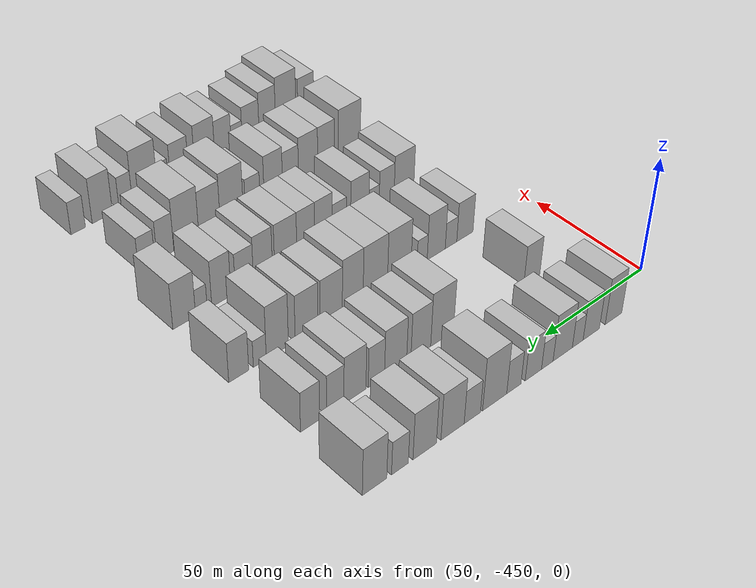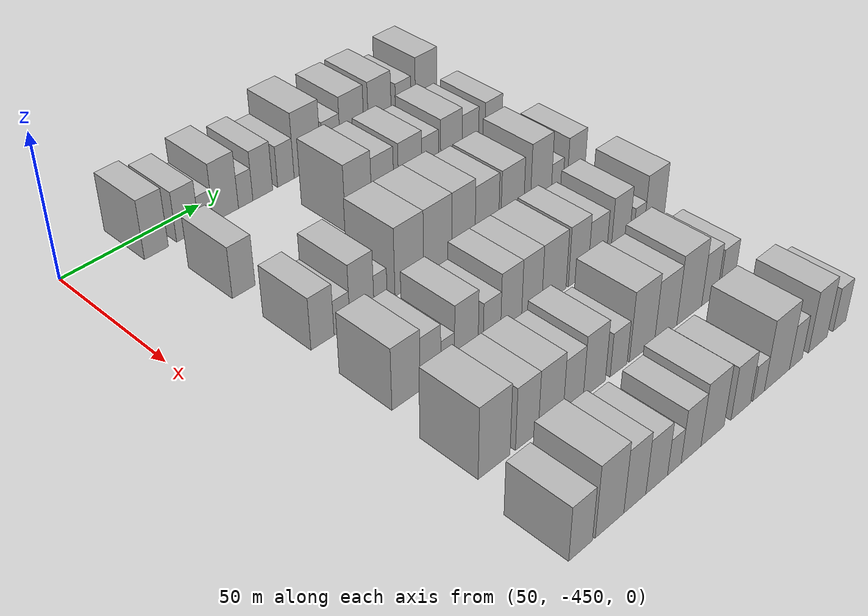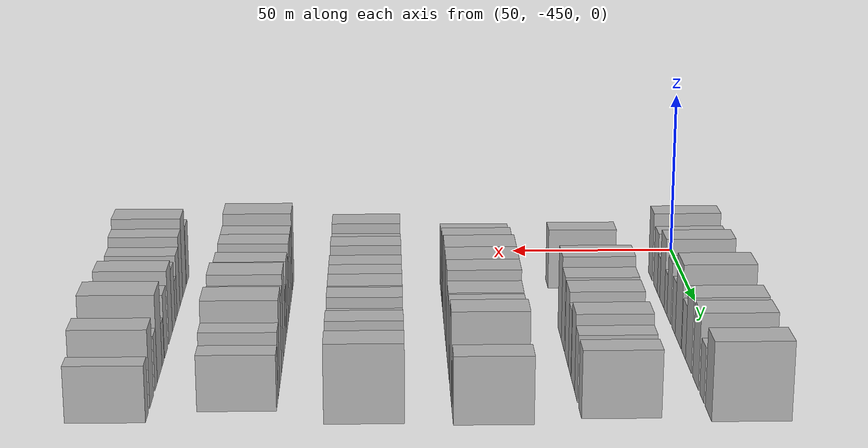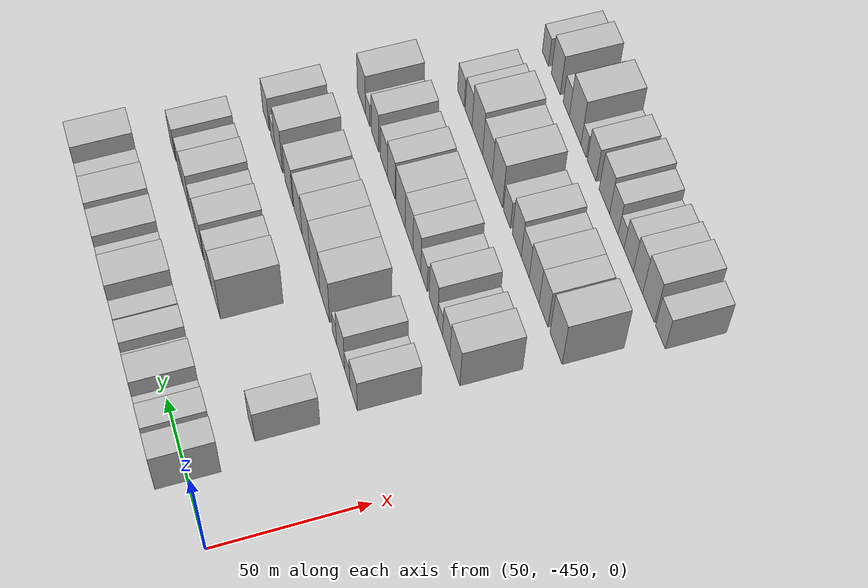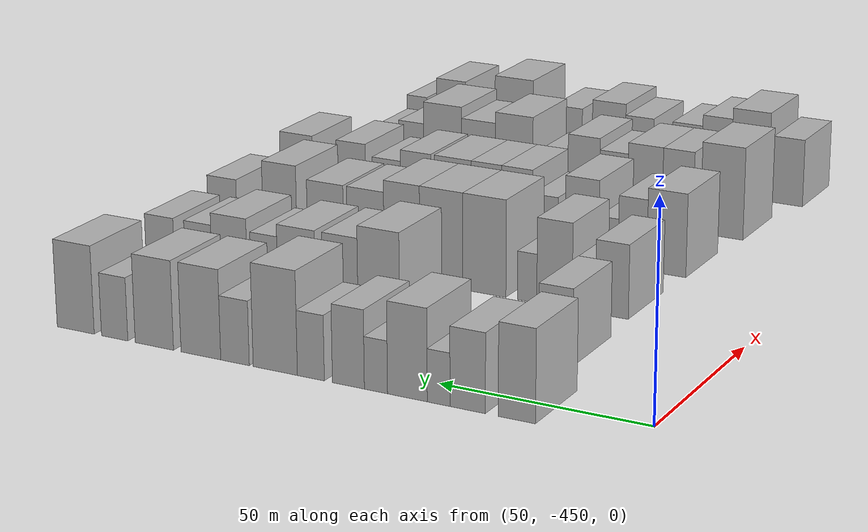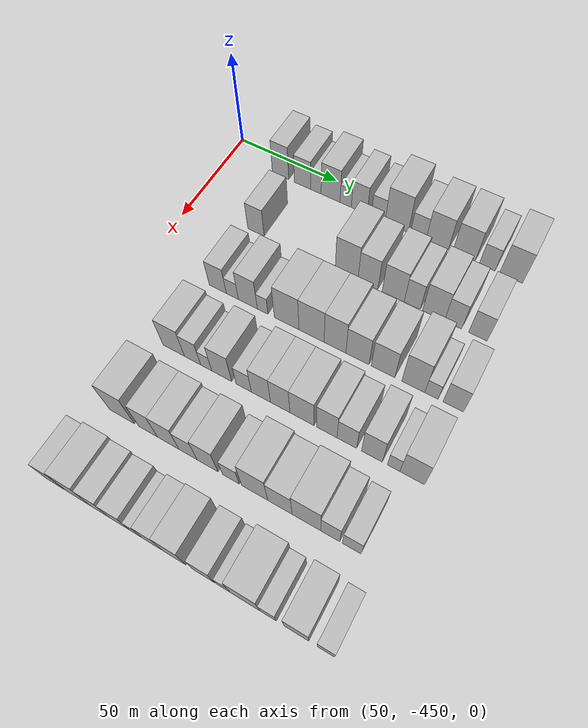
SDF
<sdf version="1.6">
 <world name="default">
  <model name="building_9">
   <static>1</static>
   <pose>50.0000 -423.4777 0 0.000000 0.000000 0.000000</pose>
   <link name="link">
    <pose>0 0 10.50 0 0 0</pose>
    <collision name="collision"><geometry><box><size>20.0000 8.5960 21.0000</size></box></geometry></collision>
    <visual name="visual">
     <cast_shadows>0</cast_shadows>
     <geometry><box><size>20.0000 8.5960 21.0000</size></box></geometry>
     <material>
      <script>
       <uri>model://HANNAS_wall/materials/scripts</uri>
       <uri>model://HANNAS_wall/materials/textures</uri>
       <name>vrc/HANNAS_wall</name>
      </script>
     </material>
    </visual>
   </link>
  </model>
  <model name="building_10">
   <static>1</static>
   <pose>50.0000 -412.0099 0 0.000000 0.000000 0.000000</pose>
   <link name="link">
    <pose>0 0 9.00 0 0 0</pose>
    <collision name="collision"><geometry><box><size>20.0000 8.3396 18.0000</size></box></geometry></collision>
    <visual name="visual">
     <cast_shadows>0</cast_shadows>
     <geometry><box><size>20.0000 8.3396 18.0000</size></box></geometry>
     <material>
      <script>
       <uri>model://HANNAS_wall/materials/scripts</uri>
       <uri>model://HANNAS_wall/materials/textures</uri>
       <name>vrc/HANNAS_wall</name>
      </script>
     </material>
    </visual>
   </link>
  </model>
  <model name="building_11">
   <static>1</static>
   <pose>50.0000 -405.1322 0 0.000000 0.000000 0.000000</pose>
   <link name="link">
    <pose>0 0 6.00 0 0 0</pose>
    <collision name="collision"><geometry><box><size>20.0000 5.4160 12.0000</size></box></geometry></collision>
    <visual name="visual">
     <cast_shadows>0</cast_shadows>
     <geometry><box><size>20.0000 5.4160 12.0000</size></box></geometry>
     <material>
      <script>
       <uri>model://HANNAS_wall/materials/scripts</uri>
       <uri>model://HANNAS_wall/materials/textures</uri>
       <name>vrc/HANNAS_wall</name>
      </script>
     </material>
    </visual>
   </link>
  </model>
  <model name="building_12">
   <static>1</static>
   <pose>50.0000 -397.6413 0 0.000000 0.000000 0.000000</pose>
   <link name="link">
    <pose>0 0 10.50 0 0 0</pose>
    <collision name="collision"><geometry><box><size>20.0000 9.5656 21.0000</size></box></geometry></collision>
    <visual name="visual">
     <cast_shadows>0</cast_shadows>
     <geometry><box><size>20.0000 9.5656 21.0000</size></box></geometry>
     <material>
      <script>
       <uri>model://HANNAS_wall/materials/scripts</uri>
       <uri>model://HANNAS_wall/materials/textures</uri>
       <name>vrc/HANNAS_wall</name>
      </script>
     </material>
    </visual>
   </link>
  </model>
  <model name="building_13">
   <static>1</static>
   <pose>50.0000 -390.0340 0 0.000000 0.000000 0.000000</pose>
   <link name="link">
    <pose>0 0 6.00 0 0 0</pose>
    <collision name="collision"><geometry><box><size>20.0000 5.6491 12.0000</size></box></geometry></collision>
    <visual name="visual">
     <cast_shadows>0</cast_shadows>
     <geometry><box><size>20.0000 5.6491 12.0000</size></box></geometry>
     <material>
      <script>
       <uri>model://HANNAS_wall/materials/scripts</uri>
       <uri>model://HANNAS_wall/materials/textures</uri>
       <name>vrc/HANNAS_wall</name>
      </script>
     </material>
    </visual>
   </link>
  </model>
  <model name="building_14">
   <static>1</static>
   <pose>50.0000 -383.2667 0 0.000000 0.000000 0.000000</pose>
   <link name="link">
    <pose>0 0 9.00 0 0 0</pose>
    <collision name="collision"><geometry><box><size>20.0000 7.8855 18.0000</size></box></geometry></collision>
    <visual name="visual">
     <cast_shadows>0</cast_shadows>
     <geometry><box><size>20.0000 7.8855 18.0000</size></box></geometry>
     <material>
      <script>
       <uri>model://HANNAS_wall/materials/scripts</uri>
       <uri>model://HANNAS_wall/materials/textures</uri>
       <name>vrc/HANNAS_wall</name>
      </script>
     </material>
    </visual>
   </link>
  </model>
  <model name="building_15">
   <static>1</static>
   <pose>50.0000 -373.9476 0 0.000000 0.000000 0.000000</pose>
   <link name="link">
    <pose>0 0 7.50 0 0 0</pose>
    <collision name="collision"><geometry><box><size>20.0000 6.7527 15.0000</size></box></geometry></collision>
    <visual name="visual">
     <cast_shadows>0</cast_shadows>
     <geometry><box><size>20.0000 6.7527 15.0000</size></box></geometry>
     <material>
      <script>
       <uri>model://HANNAS_wall/materials/scripts</uri>
       <uri>model://HANNAS_wall/materials/textures</uri>
       <name>vrc/HANNAS_wall</name>
      </script>
     </material>
    </visual>
   </link>
  </model>
  <model name="building_16">
   <static>1</static>
   <pose>50.0000 -364.9535 0 0.000000 0.000000 0.000000</pose>
   <link name="link">
    <pose>0 0 12.00 0 0 0</pose>
    <collision name="collision"><geometry><box><size>20.0000 11.2354 24.0000</size></box></geometry></collision>
    <visual name="visual">
     <cast_shadows>0</cast_shadows>
     <geometry><box><size>20.0000 11.2354 24.0000</size></box></geometry>
     <material>
      <script>
       <uri>model://HANNAS_wall/materials/scripts</uri>
       <uri>model://HANNAS_wall/materials/textures</uri>
       <name>vrc/HANNAS_wall</name>
      </script>
     </material>
    </visual>
   </link>
  </model>
  <model name="building_17">
   <static>1</static>
   <pose>50.0000 -354.6423 0 0.000000 0.000000 0.000000</pose>
   <link name="link">
    <pose>0 0 7.50 0 0 0</pose>
    <collision name="collision"><geometry><box><size>20.0000 7.3870 15.0000</size></box></geometry></collision>
    <visual name="visual">
     <cast_shadows>0</cast_shadows>
     <geometry><box><size>20.0000 7.3870 15.0000</size></box></geometry>
     <material>
      <script>
       <uri>model://HANNAS_wall/materials/scripts</uri>
       <uri>model://HANNAS_wall/materials/textures</uri>
       <name>vrc/HANNAS_wall</name>
      </script>
     </material>
    </visual>
   </link>
  </model>
  <model name="building_18">
   <static>1</static>
   <pose>50.0000 -345.7513 0 0.000000 0.000000 0.000000</pose>
   <link name="link">
    <pose>0 0 10.50 0 0 0</pose>
    <collision name="collision"><geometry><box><size>20.0000 10.3950 21.0000</size></box></geometry></collision>
    <visual name="visual">
     <cast_shadows>0</cast_shadows>
     <geometry><box><size>20.0000 10.3950 21.0000</size></box></geometry>
     <material>
      <script>
       <uri>model://HANNAS_wall/materials/scripts</uri>
       <uri>model://HANNAS_wall/materials/textures</uri>
       <name>vrc/HANNAS_wall</name>
      </script>
     </material>
    </visual>
   </link>
  </model>
  <model name="building_19">
   <static>1</static>
   <pose>50.0000 -333.4408 0 0.000000 0.000000 0.000000</pose>
   <link name="link">
    <pose>0 0 10.50 0 0 0</pose>
    <collision name="collision"><geometry><box><size>20.0000 10.2261 21.0000</size></box></geometry></collision>
    <visual name="visual">
     <cast_shadows>0</cast_shadows>
     <geometry><box><size>20.0000 10.2261 21.0000</size></box></geometry>
     <material>
      <script>
       <uri>model://HANNAS_wall/materials/scripts</uri>
       <uri>model://HANNAS_wall/materials/textures</uri>
       <name>vrc/HANNAS_wall</name>
      </script>
     </material>
    </visual>
   </link>
  </model>
  <model name="building_20">
   <static>1</static>
   <pose>50.0000 -322.7514 0 0.000000 0.000000 0.000000</pose>
   <link name="link">
    <pose>0 0 7.50 0 0 0</pose>
    <collision name="collision"><geometry><box><size>20.0000 7.1527 15.0000</size></box></geometry></collision>
    <visual name="visual">
     <cast_shadows>0</cast_shadows>
     <geometry><box><size>20.0000 7.1527 15.0000</size></box></geometry>
     <material>
      <script>
       <uri>model://HANNAS_wall/materials/scripts</uri>
       <uri>model://HANNAS_wall/materials/textures</uri>
       <name>vrc/HANNAS_wall</name>
      </script>
     </material>
    </visual>
   </link>
  </model>
  <model name="building_21">
   <static>1</static>
   <pose>50.0000 -312.0736 0 0.000000 0.000000 0.000000</pose>
   <link name="link">
    <pose>0 0 10.50 0 0 0</pose>
    <collision name="collision"><geometry><box><size>20.0000 10.2030 21.0000</size></box></geometry></collision>
    <visual name="visual">
     <cast_shadows>0</cast_shadows>
     <geometry><box><size>20.0000 10.2030 21.0000</size></box></geometry>
     <material>
      <script>
       <uri>model://HANNAS_wall/materials/scripts</uri>
       <uri>model://HANNAS_wall/materials/textures</uri>
       <name>vrc/HANNAS_wall</name>
      </script>
     </material>
    </visual>
   </link>
  </model>
  <model name="building_124">
   <static>1</static>
   <pose>82.0000 -416.9278 0 0.000000 0.000000 0.000000</pose>
   <link name="link">
    <pose>0 0 9.00 0 0 0</pose>
    <collision name="collision"><geometry><box><size>20.0000 8.2625 18.0000</size></box></geometry></collision>
    <visual name="visual">
     <cast_shadows>0</cast_shadows>
     <geometry><box><size>20.0000 8.2625 18.0000</size></box></geometry>
     <material>
      <script>
       <uri>model://HANNAS_wall/materials/scripts</uri>
       <uri>model://HANNAS_wall/materials/textures</uri>
       <name>vrc/HANNAS_wall</name>
      </script>
     </material>
    </visual>
   </link>
  </model>
  <model name="building_125">
   <static>1</static>
   <pose>82.0000 -372.6218 0 0.000000 0.000000 0.000000</pose>
   <link name="link">
    <pose>0 0 12.00 0 0 0</pose>
    <collision name="collision"><geometry><box><size>20.0000 10.7831 24.0000</size></box></geometry></collision>
    <visual name="visual">
     <cast_shadows>0</cast_shadows>
     <geometry><box><size>20.0000 10.7831 24.0000</size></box></geometry>
     <material>
      <script>
       <uri>model://HANNAS_wall/materials/scripts</uri>
       <uri>model://HANNAS_wall/materials/textures</uri>
       <name>vrc/HANNAS_wall</name>
      </script>
     </material>
    </visual>
   </link>
  </model>
  <model name="building_126">
   <static>1</static>
   <pose>82.0000 -362.6271 0 0.000000 0.000000 0.000000</pose>
   <link name="link">
    <pose>0 0 10.50 0 0 0</pose>
    <collision name="collision"><geometry><box><size>20.0000 9.2064 21.0000</size></box></geometry></collision>
    <visual name="visual">
     <cast_shadows>0</cast_shadows>
     <geometry><box><size>20.0000 9.2064 21.0000</size></box></geometry>
     <material>
      <script>
       <uri>model://HANNAS_wall/materials/scripts</uri>
       <uri>model://HANNAS_wall/materials/textures</uri>
       <name>vrc/HANNAS_wall</name>
      </script>
     </material>
    </visual>
   </link>
  </model>
  <model name="building_127">
   <static>1</static>
   <pose>82.0000 -351.0024 0 0.000000 0.000000 0.000000</pose>
   <link name="link">
    <pose>0 0 10.50 0 0 0</pose>
    <collision name="collision"><geometry><box><size>20.0000 10.0430 21.0000</size></box></geometry></collision>
    <visual name="visual">
     <cast_shadows>0</cast_shadows>
     <geometry><box><size>20.0000 10.0430 21.0000</size></box></geometry>
     <material>
      <script>
       <uri>model://HANNAS_wall/materials/scripts</uri>
       <uri>model://HANNAS_wall/materials/textures</uri>
       <name>vrc/HANNAS_wall</name>
      </script>
     </material>
    </visual>
   </link>
  </model>
  <model name="building_128">
   <static>1</static>
   <pose>82.0000 -342.3606 0 0.000000 0.000000 0.000000</pose>
   <link name="link">
    <pose>0 0 9.00 0 0 0</pose>
    <collision name="collision"><geometry><box><size>20.0000 7.2405 18.0000</size></box></geometry></collision>
    <visual name="visual">
     <cast_shadows>0</cast_shadows>
     <geometry><box><size>20.0000 7.2405 18.0000</size></box></geometry>
     <material>
      <script>
       <uri>model://HANNAS_wall/materials/scripts</uri>
       <uri>model://HANNAS_wall/materials/textures</uri>
       <name>vrc/HANNAS_wall</name>
      </script>
     </material>
    </visual>
   </link>
  </model>
  <model name="building_129">
   <static>1</static>
   <pose>82.0000 -332.8972 0 0.000000 0.000000 0.000000</pose>
   <link name="link">
    <pose>0 0 10.50 0 0 0</pose>
    <collision name="collision"><geometry><box><size>20.0000 9.6863 21.0000</size></box></geometry></collision>
    <visual name="visual">
     <cast_shadows>0</cast_shadows>
     <geometry><box><size>20.0000 9.6863 21.0000</size></box></geometry>
     <material>
      <script>
       <uri>model://HANNAS_wall/materials/scripts</uri>
       <uri>model://HANNAS_wall/materials/textures</uri>
       <name>vrc/HANNAS_wall</name>
      </script>
     </material>
    </visual>
   </link>
  </model>
  <model name="building_130">
   <static>1</static>
   <pose>82.0000 -324.3057 0 0.000000 0.000000 0.000000</pose>
   <link name="link">
    <pose>0 0 9.00 0 0 0</pose>
    <collision name="collision"><geometry><box><size>20.0000 7.4966 18.0000</size></box></geometry></collision>
    <visual name="visual">
     <cast_shadows>0</cast_shadows>
     <geometry><box><size>20.0000 7.4966 18.0000</size></box></geometry>
     <material>
      <script>
       <uri>model://HANNAS_wall/materials/scripts</uri>
       <uri>model://HANNAS_wall/materials/textures</uri>
       <name>vrc/HANNAS_wall</name>
      </script>
     </material>
    </visual>
   </link>
  </model>
  <model name="building_131">
   <static>1</static>
   <pose>82.0000 -313.5541 0 0.000000 0.000000 0.000000</pose>
   <link name="link">
    <pose>0 0 9.00 0 0 0</pose>
    <collision name="collision"><geometry><box><size>20.0000 8.0067 18.0000</size></box></geometry></collision>
    <visual name="visual">
     <cast_shadows>0</cast_shadows>
     <geometry><box><size>20.0000 8.0067 18.0000</size></box></geometry>
     <material>
      <script>
       <uri>model://HANNAS_wall/materials/scripts</uri>
       <uri>model://HANNAS_wall/materials/textures</uri>
       <name>vrc/HANNAS_wall</name>
      </script>
     </material>
    </visual>
   </link>
  </model>
  <model name="building_232">
   <static>1</static>
   <pose>114.0000 -415.7824 0 0.000000 0.000000 0.000000</pose>
   <link name="link">
    <pose>0 0 9.00 0 0 0</pose>
    <collision name="collision"><geometry><box><size>20.0000 8.3455 18.0000</size></box></geometry></collision>
    <visual name="visual">
     <cast_shadows>0</cast_shadows>
     <geometry><box><size>20.0000 8.3455 18.0000</size></box></geometry>
     <material>
      <script>
       <uri>model://HANNAS_wall/materials/scripts</uri>
       <uri>model://HANNAS_wall/materials/textures</uri>
       <name>vrc/HANNAS_wall</name>
      </script>
     </material>
    </visual>
   </link>
  </model>
  <model name="building_233">
   <static>1</static>
   <pose>114.0000 -408.6740 0 0.000000 0.000000 0.000000</pose>
   <link name="link">
    <pose>0 0 6.00 0 0 0</pose>
    <collision name="collision"><geometry><box><size>20.0000 5.8712 12.0000</size></box></geometry></collision>
    <visual name="visual">
     <cast_shadows>0</cast_shadows>
     <geometry><box><size>20.0000 5.8712 12.0000</size></box></geometry>
     <material>
      <script>
       <uri>model://HANNAS_wall/materials/scripts</uri>
       <uri>model://HANNAS_wall/materials/textures</uri>
       <name>vrc/HANNAS_wall</name>
      </script>
     </material>
    </visual>
   </link>
  </model>
  <model name="building_234">
   <static>1</static>
   <pose>114.0000 -401.1987 0 0.000000 0.000000 0.000000</pose>
   <link name="link">
    <pose>0 0 10.50 0 0 0</pose>
    <collision name="collision"><geometry><box><size>20.0000 9.0793 21.0000</size></box></geometry></collision>
    <visual name="visual">
     <cast_shadows>0</cast_shadows>
     <geometry><box><size>20.0000 9.0793 21.0000</size></box></geometry>
     <material>
      <script>
       <uri>model://HANNAS_wall/materials/scripts</uri>
       <uri>model://HANNAS_wall/materials/textures</uri>
       <name>vrc/HANNAS_wall</name>
      </script>
     </material>
    </visual>
   </link>
  </model>
  <model name="building_235">
   <static>1</static>
   <pose>114.0000 -394.1381 0 0.000000 0.000000 0.000000</pose>
   <link name="link">
    <pose>0 0 6.00 0 0 0</pose>
    <collision name="collision"><geometry><box><size>20.0000 5.0420 12.0000</size></box></geometry></collision>
    <visual name="visual">
     <cast_shadows>0</cast_shadows>
     <geometry><box><size>20.0000 5.0420 12.0000</size></box></geometry>
     <material>
      <script>
       <uri>model://HANNAS_wall/materials/scripts</uri>
       <uri>model://HANNAS_wall/materials/textures</uri>
       <name>vrc/HANNAS_wall</name>
      </script>
     </material>
    </visual>
   </link>
  </model>
  <model name="building_236">
   <static>1</static>
   <pose>114.0000 -382.9175 0 0.000000 0.000000 0.000000</pose>
   <link name="link">
    <pose>0 0 12.00 0 0 0</pose>
    <collision name="collision"><geometry><box><size>20.0000 11.3992 24.0000</size></box></geometry></collision>
    <visual name="visual">
     <cast_shadows>0</cast_shadows>
     <geometry><box><size>20.0000 11.3992 24.0000</size></box></geometry>
     <material>
      <script>
       <uri>model://HANNAS_wall/materials/scripts</uri>
       <uri>model://HANNAS_wall/materials/textures</uri>
       <name>vrc/HANNAS_wall</name>
      </script>
     </material>
    </visual>
   </link>
  </model>
  <model name="building_237">
   <static>1</static>
   <pose>114.0000 -371.4480 0 0.000000 0.000000 0.000000</pose>
   <link name="link">
    <pose>0 0 12.00 0 0 0</pose>
    <collision name="collision"><geometry><box><size>20.0000 11.5396 24.0000</size></box></geometry></collision>
    <visual name="visual">
     <cast_shadows>0</cast_shadows>
     <geometry><box><size>20.0000 11.5396 24.0000</size></box></geometry>
     <material>
      <script>
       <uri>model://HANNAS_wall/materials/scripts</uri>
       <uri>model://HANNAS_wall/materials/textures</uri>
       <name>vrc/HANNAS_wall</name>
      </script>
     </material>
    </visual>
   </link>
  </model>
  <model name="building_238">
   <static>1</static>
   <pose>114.0000 -360.8293 0 0.000000 0.000000 0.000000</pose>
   <link name="link">
    <pose>0 0 12.00 0 0 0</pose>
    <collision name="collision"><geometry><box><size>20.0000 9.6978 24.0000</size></box></geometry></collision>
    <visual name="visual">
     <cast_shadows>0</cast_shadows>
     <geometry><box><size>20.0000 9.6978 24.0000</size></box></geometry>
     <material>
      <script>
       <uri>model://HANNAS_wall/materials/scripts</uri>
       <uri>model://HANNAS_wall/materials/textures</uri>
       <name>vrc/HANNAS_wall</name>
      </script>
     </material>
    </visual>
   </link>
  </model>
  <model name="building_239">
   <static>1</static>
   <pose>114.0000 -350.8976 0 0.000000 0.000000 0.000000</pose>
   <link name="link">
    <pose>0 0 10.50 0 0 0</pose>
    <collision name="collision"><geometry><box><size>20.0000 10.1657 21.0000</size></box></geometry></collision>
    <visual name="visual">
     <cast_shadows>0</cast_shadows>
     <geometry><box><size>20.0000 10.1657 21.0000</size></box></geometry>
     <material>
      <script>
       <uri>model://HANNAS_wall/materials/scripts</uri>
       <uri>model://HANNAS_wall/materials/textures</uri>
       <name>vrc/HANNAS_wall</name>
      </script>
     </material>
    </visual>
   </link>
  </model>
  <model name="building_240">
   <static>1</static>
   <pose>114.0000 -339.7421 0 0.000000 0.000000 0.000000</pose>
   <link name="link">
    <pose>0 0 10.50 0 0 0</pose>
    <collision name="collision"><geometry><box><size>20.0000 10.1452 21.0000</size></box></geometry></collision>
    <visual name="visual">
     <cast_shadows>0</cast_shadows>
     <geometry><box><size>20.0000 10.1452 21.0000</size></box></geometry>
     <material>
      <script>
       <uri>model://HANNAS_wall/materials/scripts</uri>
       <uri>model://HANNAS_wall/materials/textures</uri>
       <name>vrc/HANNAS_wall</name>
      </script>
     </material>
    </visual>
   </link>
  </model>
  <model name="building_241">
   <static>1</static>
   <pose>114.0000 -326.8398 0 0.000000 0.000000 0.000000</pose>
   <link name="link">
    <pose>0 0 12.00 0 0 0</pose>
    <collision name="collision"><geometry><box><size>20.0000 9.6594 24.0000</size></box></geometry></collision>
    <visual name="visual">
     <cast_shadows>0</cast_shadows>
     <geometry><box><size>20.0000 9.6594 24.0000</size></box></geometry>
     <material>
      <script>
       <uri>model://HANNAS_wall/materials/scripts</uri>
       <uri>model://HANNAS_wall/materials/textures</uri>
       <name>vrc/HANNAS_wall</name>
      </script>
     </material>
    </visual>
   </link>
  </model>
  <model name="building_242">
   <static>1</static>
   <pose>114.0000 -319.2292 0 0.000000 0.000000 0.000000</pose>
   <link name="link">
    <pose>0 0 6.00 0 0 0</pose>
    <collision name="collision"><geometry><box><size>20.0000 5.5619 12.0000</size></box></geometry></collision>
    <visual name="visual">
     <cast_shadows>0</cast_shadows>
     <geometry><box><size>20.0000 5.5619 12.0000</size></box></geometry>
     <material>
      <script>
       <uri>model://HANNAS_wall/materials/scripts</uri>
       <uri>model://HANNAS_wall/materials/textures</uri>
       <name>vrc/HANNAS_wall</name>
      </script>
     </material>
    </visual>
   </link>
  </model>
  <model name="building_243">
   <static>1</static>
   <pose>114.0000 -310.2282 0 0.000000 0.000000 0.000000</pose>
   <link name="link">
    <pose>0 0 9.00 0 0 0</pose>
    <collision name="collision"><geometry><box><size>20.0000 8.4400 18.0000</size></box></geometry></collision>
    <visual name="visual">
     <cast_shadows>0</cast_shadows>
     <geometry><box><size>20.0000 8.4400 18.0000</size></box></geometry>
     <material>
      <script>
       <uri>model://HANNAS_wall/materials/scripts</uri>
       <uri>model://HANNAS_wall/materials/textures</uri>
       <name>vrc/HANNAS_wall</name>
      </script>
     </material>
    </visual>
   </link>
  </model>
  <model name="building_346">
   <static>1</static>
   <pose>146.0000 -415.5626 0 0.000000 0.000000 0.000000</pose>
   <link name="link">
    <pose>0 0 10.50 0 0 0</pose>
    <collision name="collision"><geometry><box><size>20.0000 10.2081 21.0000</size></box></geometry></collision>
    <visual name="visual">
     <cast_shadows>0</cast_shadows>
     <geometry><box><size>20.0000 10.2081 21.0000</size></box></geometry>
     <material>
      <script>
       <uri>model://HANNAS_wall/materials/scripts</uri>
       <uri>model://HANNAS_wall/materials/textures</uri>
       <name>vrc/HANNAS_wall</name>
      </script>
     </material>
    </visual>
   </link>
  </model>
  <model name="building_347">
   <static>1</static>
   <pose>146.0000 -406.6643 0 0.000000 0.000000 0.000000</pose>
   <link name="link">
    <pose>0 0 9.00 0 0 0</pose>
    <collision name="collision"><geometry><box><size>20.0000 7.5885 18.0000</size></box></geometry></collision>
    <visual name="visual">
     <cast_shadows>0</cast_shadows>
     <geometry><box><size>20.0000 7.5885 18.0000</size></box></geometry>
     <material>
      <script>
       <uri>model://HANNAS_wall/materials/scripts</uri>
       <uri>model://HANNAS_wall/materials/textures</uri>
       <name>vrc/HANNAS_wall</name>
      </script>
     </material>
    </visual>
   </link>
  </model>
  <model name="building_348">
   <static>1</static>
   <pose>146.0000 -400.2858 0 0.000000 0.000000 0.000000</pose>
   <link name="link">
    <pose>0 0 6.00 0 0 0</pose>
    <collision name="collision"><geometry><box><size>20.0000 5.1684 12.0000</size></box></geometry></collision>
    <visual name="visual">
     <cast_shadows>0</cast_shadows>
     <geometry><box><size>20.0000 5.1684 12.0000</size></box></geometry>
     <material>
      <script>
       <uri>model://HANNAS_wall/materials/scripts</uri>
       <uri>model://HANNAS_wall/materials/textures</uri>
       <name>vrc/HANNAS_wall</name>
      </script>
     </material>
    </visual>
   </link>
  </model>
  <model name="building_349">
   <static>1</static>
   <pose>146.0000 -393.1628 0 0.000000 0.000000 0.000000</pose>
   <link name="link">
    <pose>0 0 10.50 0 0 0</pose>
    <collision name="collision"><geometry><box><size>20.0000 9.0776 21.0000</size></box></geometry></collision>
    <visual name="visual">
     <cast_shadows>0</cast_shadows>
     <geometry><box><size>20.0000 9.0776 21.0000</size></box></geometry>
     <material>
      <script>
       <uri>model://HANNAS_wall/materials/scripts</uri>
       <uri>model://HANNAS_wall/materials/textures</uri>
       <name>vrc/HANNAS_wall</name>
      </script>
     </material>
    </visual>
   </link>
  </model>
  <model name="building_350">
   <static>1</static>
   <pose>146.0000 -383.1751 0 0.000000 0.000000 0.000000</pose>
   <link name="link">
    <pose>0 0 7.50 0 0 0</pose>
    <collision name="collision"><geometry><box><size>20.0000 6.8979 15.0000</size></box></geometry></collision>
    <visual name="visual">
     <cast_shadows>0</cast_shadows>
     <geometry><box><size>20.0000 6.8979 15.0000</size></box></geometry>
     <material>
      <script>
       <uri>model://HANNAS_wall/materials/scripts</uri>
       <uri>model://HANNAS_wall/materials/textures</uri>
       <name>vrc/HANNAS_wall</name>
      </script>
     </material>
    </visual>
   </link>
  </model>
  <model name="building_351">
   <static>1</static>
   <pose>146.0000 -375.4685 0 0.000000 0.000000 0.000000</pose>
   <link name="link">
    <pose>0 0 10.50 0 0 0</pose>
    <collision name="collision"><geometry><box><size>20.0000 8.5153 21.0000</size></box></geometry></collision>
    <visual name="visual">
     <cast_shadows>0</cast_shadows>
     <geometry><box><size>20.0000 8.5153 21.0000</size></box></geometry>
     <material>
      <script>
       <uri>model://HANNAS_wall/materials/scripts</uri>
       <uri>model://HANNAS_wall/materials/textures</uri>
       <name>vrc/HANNAS_wall</name>
      </script>
     </material>
    </visual>
   </link>
  </model>
  <model name="building_352">
   <static>1</static>
   <pose>146.0000 -366.9878 0 0.000000 0.000000 0.000000</pose>
   <link name="link">
    <pose>0 0 10.50 0 0 0</pose>
    <collision name="collision"><geometry><box><size>20.0000 8.4460 21.0000</size></box></geometry></collision>
    <visual name="visual">
     <cast_shadows>0</cast_shadows>
     <geometry><box><size>20.0000 8.4460 21.0000</size></box></geometry>
     <material>
      <script>
       <uri>model://HANNAS_wall/materials/scripts</uri>
       <uri>model://HANNAS_wall/materials/textures</uri>
       <name>vrc/HANNAS_wall</name>
      </script>
     </material>
    </visual>
   </link>
  </model>
  <model name="building_353">
   <static>1</static>
   <pose>146.0000 -357.5821 0 0.000000 0.000000 0.000000</pose>
   <link name="link">
    <pose>0 0 10.50 0 0 0</pose>
    <collision name="collision"><geometry><box><size>20.0000 10.3655 21.0000</size></box></geometry></collision>
    <visual name="visual">
     <cast_shadows>0</cast_shadows>
     <geometry><box><size>20.0000 10.3655 21.0000</size></box></geometry>
     <material>
      <script>
       <uri>model://HANNAS_wall/materials/scripts</uri>
       <uri>model://HANNAS_wall/materials/textures</uri>
       <name>vrc/HANNAS_wall</name>
      </script>
     </material>
    </visual>
   </link>
  </model>
  <model name="building_354">
   <static>1</static>
   <pose>146.0000 -347.0587 0 0.000000 0.000000 0.000000</pose>
   <link name="link">
    <pose>0 0 10.50 0 0 0</pose>
    <collision name="collision"><geometry><box><size>20.0000 8.6813 21.0000</size></box></geometry></collision>
    <visual name="visual">
     <cast_shadows>0</cast_shadows>
     <geometry><box><size>20.0000 8.6813 21.0000</size></box></geometry>
     <material>
      <script>
       <uri>model://HANNAS_wall/materials/scripts</uri>
       <uri>model://HANNAS_wall/materials/textures</uri>
       <name>vrc/HANNAS_wall</name>
      </script>
     </material>
    </visual>
   </link>
  </model>
  <model name="building_355">
   <static>1</static>
   <pose>146.0000 -338.6442 0 0.000000 0.000000 0.000000</pose>
   <link name="link">
    <pose>0 0 9.00 0 0 0</pose>
    <collision name="collision"><geometry><box><size>20.0000 8.1475 18.0000</size></box></geometry></collision>
    <visual name="visual">
     <cast_shadows>0</cast_shadows>
     <geometry><box><size>20.0000 8.1475 18.0000</size></box></geometry>
     <material>
      <script>
       <uri>model://HANNAS_wall/materials/scripts</uri>
       <uri>model://HANNAS_wall/materials/textures</uri>
       <name>vrc/HANNAS_wall</name>
      </script>
     </material>
    </visual>
   </link>
  </model>
  <model name="building_356">
   <static>1</static>
   <pose>146.0000 -328.3301 0 0.000000 0.000000 0.000000</pose>
   <link name="link">
    <pose>0 0 10.50 0 0 0</pose>
    <collision name="collision"><geometry><box><size>20.0000 8.4806 21.0000</size></box></geometry></collision>
    <visual name="visual">
     <cast_shadows>0</cast_shadows>
     <geometry><box><size>20.0000 8.4806 21.0000</size></box></geometry>
     <material>
      <script>
       <uri>model://HANNAS_wall/materials/scripts</uri>
       <uri>model://HANNAS_wall/materials/textures</uri>
       <name>vrc/HANNAS_wall</name>
      </script>
     </material>
    </visual>
   </link>
  </model>
  <model name="building_357">
   <static>1</static>
   <pose>146.0000 -319.5629 0 0.000000 0.000000 0.000000</pose>
   <link name="link">
    <pose>0 0 6.00 0 0 0</pose>
    <collision name="collision"><geometry><box><size>20.0000 5.0540 12.0000</size></box></geometry></collision>
    <visual name="visual">
     <cast_shadows>0</cast_shadows>
     <geometry><box><size>20.0000 5.0540 12.0000</size></box></geometry>
     <material>
      <script>
       <uri>model://HANNAS_wall/materials/scripts</uri>
       <uri>model://HANNAS_wall/materials/textures</uri>
       <name>vrc/HANNAS_wall</name>
      </script>
     </material>
    </visual>
   </link>
  </model>
  <model name="building_358">
   <static>1</static>
   <pose>146.0000 -312.1546 0 0.000000 0.000000 0.000000</pose>
   <link name="link">
    <pose>0 0 10.50 0 0 0</pose>
    <collision name="collision"><geometry><box><size>20.0000 9.7626 21.0000</size></box></geometry></collision>
    <visual name="visual">
     <cast_shadows>0</cast_shadows>
     <geometry><box><size>20.0000 9.7626 21.0000</size></box></geometry>
     <material>
      <script>
       <uri>model://HANNAS_wall/materials/scripts</uri>
       <uri>model://HANNAS_wall/materials/textures</uri>
       <name>vrc/HANNAS_wall</name>
      </script>
     </material>
    </visual>
   </link>
  </model>
  <model name="building_475">
   <static>1</static>
   <pose>178.0000 -416.8198 0 0.000000 0.000000 0.000000</pose>
   <link name="link">
    <pose>0 0 12.00 0 0 0</pose>
    <collision name="collision"><geometry><box><size>20.0000 11.4587 24.0000</size></box></geometry></collision>
    <visual name="visual">
     <cast_shadows>0</cast_shadows>
     <geometry><box><size>20.0000 11.4587 24.0000</size></box></geometry>
     <material>
      <script>
       <uri>model://HANNAS_wall/materials/scripts</uri>
       <uri>model://HANNAS_wall/materials/textures</uri>
       <name>vrc/HANNAS_wall</name>
      </script>
     </material>
    </visual>
   </link>
  </model>
  <model name="building_476">
   <static>1</static>
   <pose>178.0000 -404.8264 0 0.000000 0.000000 0.000000</pose>
   <link name="link">
    <pose>0 0 10.50 0 0 0</pose>
    <collision name="collision"><geometry><box><size>20.0000 8.5281 21.0000</size></box></geometry></collision>
    <visual name="visual">
     <cast_shadows>0</cast_shadows>
     <geometry><box><size>20.0000 8.5281 21.0000</size></box></geometry>
     <material>
      <script>
       <uri>model://HANNAS_wall/materials/scripts</uri>
       <uri>model://HANNAS_wall/materials/textures</uri>
       <name>vrc/HANNAS_wall</name>
      </script>
     </material>
    </visual>
   </link>
  </model>
  <model name="building_477">
   <static>1</static>
   <pose>178.0000 -395.7548 0 0.000000 0.000000 0.000000</pose>
   <link name="link">
    <pose>0 0 10.50 0 0 0</pose>
    <collision name="collision"><geometry><box><size>20.0000 9.6150 21.0000</size></box></geometry></collision>
    <visual name="visual">
     <cast_shadows>0</cast_shadows>
     <geometry><box><size>20.0000 9.6150 21.0000</size></box></geometry>
     <material>
      <script>
       <uri>model://HANNAS_wall/materials/scripts</uri>
       <uri>model://HANNAS_wall/materials/textures</uri>
       <name>vrc/HANNAS_wall</name>
      </script>
     </material>
    </visual>
   </link>
  </model>
  <model name="building_478">
   <static>1</static>
   <pose>178.0000 -386.9994 0 0.000000 0.000000 0.000000</pose>
   <link name="link">
    <pose>0 0 9.00 0 0 0</pose>
    <collision name="collision"><geometry><box><size>20.0000 7.8959 18.0000</size></box></geometry></collision>
    <visual name="visual">
     <cast_shadows>0</cast_shadows>
     <geometry><box><size>20.0000 7.8959 18.0000</size></box></geometry>
     <material>
      <script>
       <uri>model://HANNAS_wall/materials/scripts</uri>
       <uri>model://HANNAS_wall/materials/textures</uri>
       <name>vrc/HANNAS_wall</name>
      </script>
     </material>
    </visual>
   </link>
  </model>
  <model name="building_479">
   <static>1</static>
   <pose>178.0000 -378.5696 0 0.000000 0.000000 0.000000</pose>
   <link name="link">
    <pose>0 0 10.50 0 0 0</pose>
    <collision name="collision"><geometry><box><size>20.0000 8.9636 21.0000</size></box></geometry></collision>
    <visual name="visual">
     <cast_shadows>0</cast_shadows>
     <geometry><box><size>20.0000 8.9636 21.0000</size></box></geometry>
     <material>
      <script>
       <uri>model://HANNAS_wall/materials/scripts</uri>
       <uri>model://HANNAS_wall/materials/textures</uri>
       <name>vrc/HANNAS_wall</name>
      </script>
     </material>
    </visual>
   </link>
  </model>
  <model name="building_480">
   <static>1</static>
   <pose>178.0000 -368.5594 0 0.000000 0.000000 0.000000</pose>
   <link name="link">
    <pose>0 0 7.50 0 0 0</pose>
    <collision name="collision"><geometry><box><size>20.0000 7.0568 15.0000</size></box></geometry></collision>
    <visual name="visual">
     <cast_shadows>0</cast_shadows>
     <geometry><box><size>20.0000 7.0568 15.0000</size></box></geometry>
     <material>
      <script>
       <uri>model://HANNAS_wall/materials/scripts</uri>
       <uri>model://HANNAS_wall/materials/textures</uri>
       <name>vrc/HANNAS_wall</name>
      </script>
     </material>
    </visual>
   </link>
  </model>
  <model name="building_481">
   <static>1</static>
   <pose>178.0000 -358.6138 0 0.000000 0.000000 0.000000</pose>
   <link name="link">
    <pose>0 0 12.00 0 0 0</pose>
    <collision name="collision"><geometry><box><size>20.0000 10.8343 24.0000</size></box></geometry></collision>
    <visual name="visual">
     <cast_shadows>0</cast_shadows>
     <geometry><box><size>20.0000 10.8343 24.0000</size></box></geometry>
     <material>
      <script>
       <uri>model://HANNAS_wall/materials/scripts</uri>
       <uri>model://HANNAS_wall/materials/textures</uri>
       <name>vrc/HANNAS_wall</name>
      </script>
     </material>
    </visual>
   </link>
  </model>
  <model name="building_482">
   <static>1</static>
   <pose>178.0000 -348.2372 0 0.000000 0.000000 0.000000</pose>
   <link name="link">
    <pose>0 0 10.50 0 0 0</pose>
    <collision name="collision"><geometry><box><size>20.0000 9.9190 21.0000</size></box></geometry></collision>
    <visual name="visual">
     <cast_shadows>0</cast_shadows>
     <geometry><box><size>20.0000 9.9190 21.0000</size></box></geometry>
     <material>
      <script>
       <uri>model://HANNAS_wall/materials/scripts</uri>
       <uri>model://HANNAS_wall/materials/textures</uri>
       <name>vrc/HANNAS_wall</name>
      </script>
     </material>
    </visual>
   </link>
  </model>
  <model name="building_483">
   <static>1</static>
   <pose>178.0000 -337.5874 0 0.000000 0.000000 0.000000</pose>
   <link name="link">
    <pose>0 0 12.00 0 0 0</pose>
    <collision name="collision"><geometry><box><size>20.0000 11.3805 24.0000</size></box></geometry></collision>
    <visual name="visual">
     <cast_shadows>0</cast_shadows>
     <geometry><box><size>20.0000 11.3805 24.0000</size></box></geometry>
     <material>
      <script>
       <uri>model://HANNAS_wall/materials/scripts</uri>
       <uri>model://HANNAS_wall/materials/textures</uri>
       <name>vrc/HANNAS_wall</name>
      </script>
     </material>
    </visual>
   </link>
  </model>
  <model name="building_484">
   <static>1</static>
   <pose>178.0000 -328.1628 0 0.000000 0.000000 0.000000</pose>
   <link name="link">
    <pose>0 0 9.00 0 0 0</pose>
    <collision name="collision"><geometry><box><size>20.0000 7.4686 18.0000</size></box></geometry></collision>
    <visual name="visual">
     <cast_shadows>0</cast_shadows>
     <geometry><box><size>20.0000 7.4686 18.0000</size></box></geometry>
     <material>
      <script>
       <uri>model://HANNAS_wall/materials/scripts</uri>
       <uri>model://HANNAS_wall/materials/textures</uri>
       <name>vrc/HANNAS_wall</name>
      </script>
     </material>
    </visual>
   </link>
  </model>
  <model name="building_485">
   <static>1</static>
   <pose>178.0000 -319.8196 0 0.000000 0.000000 0.000000</pose>
   <link name="link">
    <pose>0 0 7.50 0 0 0</pose>
    <collision name="collision"><geometry><box><size>20.0000 7.2177 15.0000</size></box></geometry></collision>
    <visual name="visual">
     <cast_shadows>0</cast_shadows>
     <geometry><box><size>20.0000 7.2177 15.0000</size></box></geometry>
     <material>
      <script>
       <uri>model://HANNAS_wall/materials/scripts</uri>
       <uri>model://HANNAS_wall/materials/textures</uri>
       <name>vrc/HANNAS_wall</name>
      </script>
     </material>
    </visual>
   </link>
  </model>
  <model name="building_596">
   <static>1</static>
   <pose>210.0000 -422.1611 0 0.000000 0.000000 0.000000</pose>
   <link name="link">
    <pose>0 0 9.00 0 0 0</pose>
    <collision name="collision"><geometry><box><size>20.0000 8.4581 18.0000</size></box></geometry></collision>
    <visual name="visual">
     <cast_shadows>0</cast_shadows>
     <geometry><box><size>20.0000 8.4581 18.0000</size></box></geometry>
     <material>
      <script>
       <uri>model://HANNAS_wall/materials/scripts</uri>
       <uri>model://HANNAS_wall/materials/textures</uri>
       <name>vrc/HANNAS_wall</name>
      </script>
     </material>
    </visual>
   </link>
  </model>
  <model name="building_597">
   <static>1</static>
   <pose>210.0000 -411.6564 0 0.000000 0.000000 0.000000</pose>
   <link name="link">
    <pose>0 0 12.00 0 0 0</pose>
    <collision name="collision"><geometry><box><size>20.0000 10.5512 24.0000</size></box></geometry></collision>
    <visual name="visual">
     <cast_shadows>0</cast_shadows>
     <geometry><box><size>20.0000 10.5512 24.0000</size></box></geometry>
     <material>
      <script>
       <uri>model://HANNAS_wall/materials/scripts</uri>
       <uri>model://HANNAS_wall/materials/textures</uri>
       <name>vrc/HANNAS_wall</name>
      </script>
     </material>
    </visual>
   </link>
  </model>
  <model name="building_598">
   <static>1</static>
   <pose>210.0000 -402.1749 0 0.000000 0.000000 0.000000</pose>
   <link name="link">
    <pose>0 0 10.50 0 0 0</pose>
    <collision name="collision"><geometry><box><size>20.0000 8.4119 21.0000</size></box></geometry></collision>
    <visual name="visual">
     <cast_shadows>0</cast_shadows>
     <geometry><box><size>20.0000 8.4119 21.0000</size></box></geometry>
     <material>
      <script>
       <uri>model://HANNAS_wall/materials/scripts</uri>
       <uri>model://HANNAS_wall/materials/textures</uri>
       <name>vrc/HANNAS_wall</name>
      </script>
     </material>
    </visual>
   </link>
  </model>
  <model name="building_599">
   <static>1</static>
   <pose>210.0000 -393.7167 0 0.000000 0.000000 0.000000</pose>
   <link name="link">
    <pose>0 0 9.00 0 0 0</pose>
    <collision name="collision"><geometry><box><size>20.0000 8.5045 18.0000</size></box></geometry></collision>
    <visual name="visual">
     <cast_shadows>0</cast_shadows>
     <geometry><box><size>20.0000 8.5045 18.0000</size></box></geometry>
     <material>
      <script>
       <uri>model://HANNAS_wall/materials/scripts</uri>
       <uri>model://HANNAS_wall/materials/textures</uri>
       <name>vrc/HANNAS_wall</name>
      </script>
     </material>
    </visual>
   </link>
  </model>
  <model name="building_600">
   <static>1</static>
   <pose>210.0000 -386.7429 0 0.000000 0.000000 0.000000</pose>
   <link name="link">
    <pose>0 0 6.00 0 0 0</pose>
    <collision name="collision"><geometry><box><size>20.0000 5.4432 12.0000</size></box></geometry></collision>
    <visual name="visual">
     <cast_shadows>0</cast_shadows>
     <geometry><box><size>20.0000 5.4432 12.0000</size></box></geometry>
     <material>
      <script>
       <uri>model://HANNAS_wall/materials/scripts</uri>
       <uri>model://HANNAS_wall/materials/textures</uri>
       <name>vrc/HANNAS_wall</name>
      </script>
     </material>
    </visual>
   </link>
  </model>
  <model name="building_601">
   <static>1</static>
   <pose>210.0000 -379.9545 0 0.000000 0.000000 0.000000</pose>
   <link name="link">
    <pose>0 0 9.00 0 0 0</pose>
    <collision name="collision"><geometry><box><size>20.0000 8.1337 18.0000</size></box></geometry></collision>
    <visual name="visual">
     <cast_shadows>0</cast_shadows>
     <geometry><box><size>20.0000 8.1337 18.0000</size></box></geometry>
     <material>
      <script>
       <uri>model://HANNAS_wall/materials/scripts</uri>
       <uri>model://HANNAS_wall/materials/textures</uri>
       <name>vrc/HANNAS_wall</name>
      </script>
     </material>
    </visual>
   </link>
  </model>
  <model name="building_602">
   <static>1</static>
   <pose>210.0000 -370.9965 0 0.000000 0.000000 0.000000</pose>
   <link name="link">
    <pose>0 0 10.50 0 0 0</pose>
    <collision name="collision"><geometry><box><size>20.0000 9.7822 21.0000</size></box></geometry></collision>
    <visual name="visual">
     <cast_shadows>0</cast_shadows>
     <geometry><box><size>20.0000 9.7822 21.0000</size></box></geometry>
     <material>
      <script>
       <uri>model://HANNAS_wall/materials/scripts</uri>
       <uri>model://HANNAS_wall/materials/textures</uri>
       <name>vrc/HANNAS_wall</name>
      </script>
     </material>
    </visual>
   </link>
  </model>
  <model name="building_603">
   <static>1</static>
   <pose>210.0000 -358.8318 0 0.000000 0.000000 0.000000</pose>
   <link name="link">
    <pose>0 0 9.00 0 0 0</pose>
    <collision name="collision"><geometry><box><size>20.0000 8.5473 18.0000</size></box></geometry></collision>
    <visual name="visual">
     <cast_shadows>0</cast_shadows>
     <geometry><box><size>20.0000 8.5473 18.0000</size></box></geometry>
     <material>
      <script>
       <uri>model://HANNAS_wall/materials/scripts</uri>
       <uri>model://HANNAS_wall/materials/textures</uri>
       <name>vrc/HANNAS_wall</name>
      </script>
     </material>
    </visual>
   </link>
  </model>
  <model name="building_604">
   <static>1</static>
   <pose>210.0000 -350.9572 0 0.000000 0.000000 0.000000</pose>
   <link name="link">
    <pose>0 0 6.00 0 0 0</pose>
    <collision name="collision"><geometry><box><size>20.0000 5.2018 12.0000</size></box></geometry></collision>
    <visual name="visual">
     <cast_shadows>0</cast_shadows>
     <geometry><box><size>20.0000 5.2018 12.0000</size></box></geometry>
     <material>
      <script>
       <uri>model://HANNAS_wall/materials/scripts</uri>
       <uri>model://HANNAS_wall/materials/textures</uri>
       <name>vrc/HANNAS_wall</name>
      </script>
     </material>
    </visual>
   </link>
  </model>
  <model name="building_605">
   <static>1</static>
   <pose>210.0000 -342.5568 0 0.000000 0.000000 0.000000</pose>
   <link name="link">
    <pose>0 0 12.00 0 0 0</pose>
    <collision name="collision"><geometry><box><size>20.0000 11.5989 24.0000</size></box></geometry></collision>
    <visual name="visual">
     <cast_shadows>0</cast_shadows>
     <geometry><box><size>20.0000 11.5989 24.0000</size></box></geometry>
     <material>
      <script>
       <uri>model://HANNAS_wall/materials/scripts</uri>
       <uri>model://HANNAS_wall/materials/textures</uri>
       <name>vrc/HANNAS_wall</name>
      </script>
     </material>
    </visual>
   </link>
  </model>
  <model name="building_606">
   <static>1</static>
   <pose>210.0000 -333.7164 0 0.000000 0.000000 0.000000</pose>
   <link name="link">
    <pose>0 0 7.50 0 0 0</pose>
    <collision name="collision"><geometry><box><size>20.0000 6.0819 15.0000</size></box></geometry></collision>
    <visual name="visual">
     <cast_shadows>0</cast_shadows>
     <geometry><box><size>20.0000 6.0819 15.0000</size></box></geometry>
     <material>
      <script>
       <uri>model://HANNAS_wall/materials/scripts</uri>
       <uri>model://HANNAS_wall/materials/textures</uri>
       <name>vrc/HANNAS_wall</name>
      </script>
     </material>
    </visual>
   </link>
  </model>
  <model name="building_607">
   <static>1</static>
   <pose>210.0000 -323.1217 0 0.000000 0.000000 0.000000</pose>
   <link name="link">
    <pose>0 0 10.50 0 0 0</pose>
    <collision name="collision"><geometry><box><size>20.0000 9.1074 21.0000</size></box></geometry></collision>
    <visual name="visual">
     <cast_shadows>0</cast_shadows>
     <geometry><box><size>20.0000 9.1074 21.0000</size></box></geometry>
     <material>
      <script>
       <uri>model://HANNAS_wall/materials/scripts</uri>
       <uri>model://HANNAS_wall/materials/textures</uri>
       <name>vrc/HANNAS_wall</name>
      </script>
     </material>
    </visual>
   </link>
  </model>
  <model name="building_608">
   <static>1</static>
   <pose>210.0000 -312.3745 0 0.000000 0.000000 0.000000</pose>
   <link name="link">
    <pose>0 0 7.50 0 0 0</pose>
    <collision name="collision"><geometry><box><size>20.0000 6.3869 15.0000</size></box></geometry></collision>
    <visual name="visual">
     <cast_shadows>0</cast_shadows>
     <geometry><box><size>20.0000 6.3869 15.0000</size></box></geometry>
     <material>
      <script>
       <uri>model://HANNAS_wall/materials/scripts</uri>
       <uri>model://HANNAS_wall/materials/textures</uri>
       <name>vrc/HANNAS_wall</name>
      </script>
     </material>
    </visual>
   </link>
  </model>
 </world>
</sdf>
